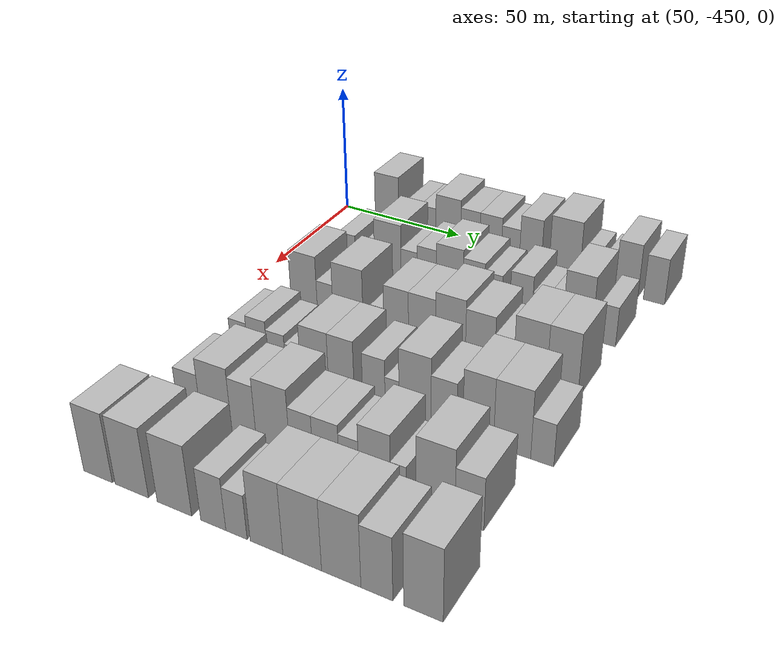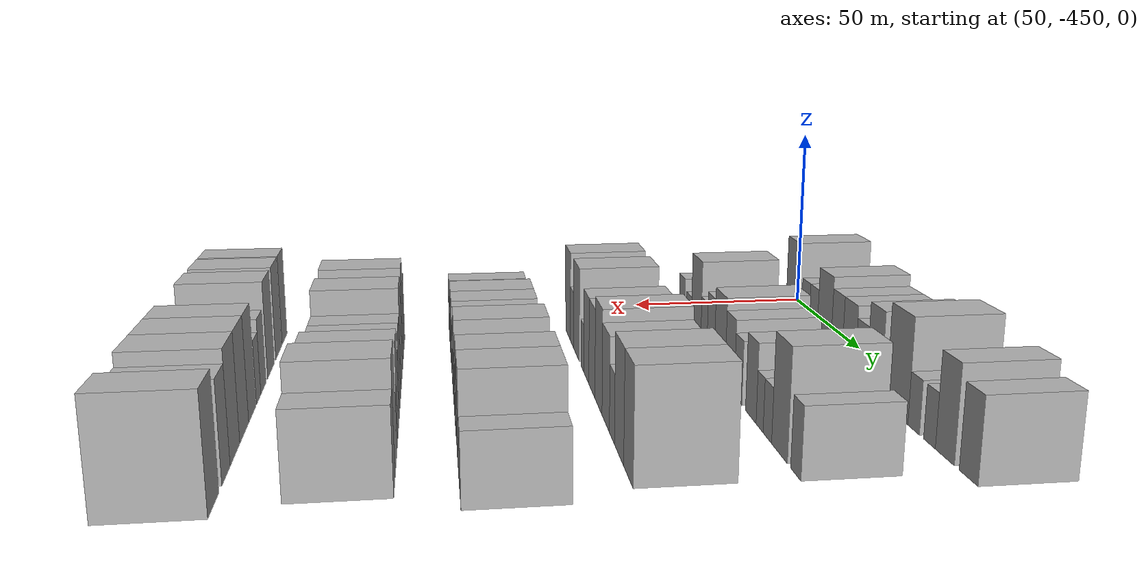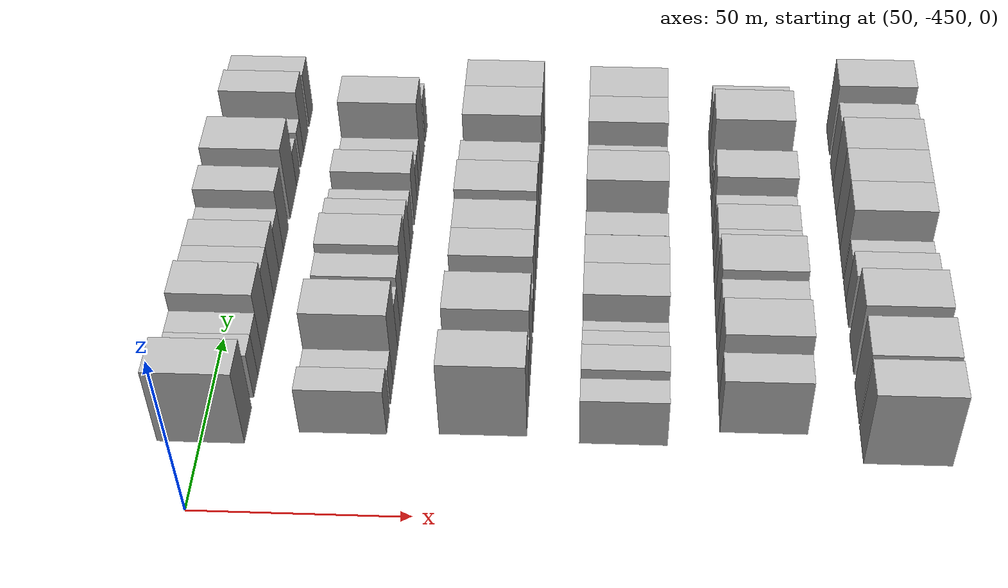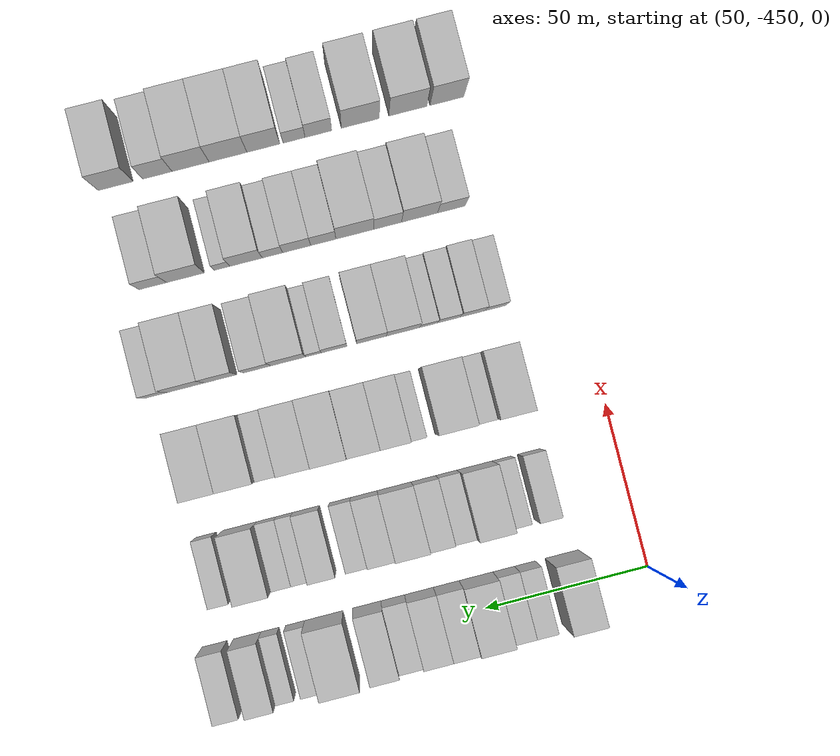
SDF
<sdf version="1.6">
 <world name="default">
  <model name="building_13">
   <static>1</static>
   <pose>50.0000 -425.9364 0 0.000000 0.000000 0.000000</pose>
   <link name="link">
    <pose>0 0 12.00 0 0 0</pose>
    <collision name="collision"><geometry><box><size>20.0000 10.2883 24.0000</size></box></geometry></collision>
    <visual name="visual">
     <cast_shadows>0</cast_shadows>
     <geometry><box><size>20.0000 10.2883 24.0000</size></box></geometry>
     <material>
      <script>
       <uri>model://HANNAS_wall/materials/scripts</uri>
       <uri>model://HANNAS_wall/materials/textures</uri>
       <name>vrc/HANNAS_wall</name>
      </script>
     </material>
    </visual>
   </link>
  </model>
  <model name="building_14">
   <static>1</static>
   <pose>50.0000 -414.5878 0 0.000000 0.000000 0.000000</pose>
   <link name="link">
    <pose>0 0 7.50 0 0 0</pose>
    <collision name="collision"><geometry><box><size>20.0000 6.4089 15.0000</size></box></geometry></collision>
    <visual name="visual">
     <cast_shadows>0</cast_shadows>
     <geometry><box><size>20.0000 6.4089 15.0000</size></box></geometry>
     <material>
      <script>
       <uri>model://HANNAS_wall/materials/scripts</uri>
       <uri>model://HANNAS_wall/materials/textures</uri>
       <name>vrc/HANNAS_wall</name>
      </script>
     </material>
    </visual>
   </link>
  </model>
  <model name="building_15">
   <static>1</static>
   <pose>50.0000 -408.0632 0 0.000000 0.000000 0.000000</pose>
   <link name="link">
    <pose>0 0 7.50 0 0 0</pose>
    <collision name="collision"><geometry><box><size>20.0000 6.6403 15.0000</size></box></geometry></collision>
    <visual name="visual">
     <cast_shadows>0</cast_shadows>
     <geometry><box><size>20.0000 6.6403 15.0000</size></box></geometry>
     <material>
      <script>
       <uri>model://HANNAS_wall/materials/scripts</uri>
       <uri>model://HANNAS_wall/materials/textures</uri>
       <name>vrc/HANNAS_wall</name>
      </script>
     </material>
    </visual>
   </link>
  </model>
  <model name="building_16">
   <static>1</static>
   <pose>50.0000 -399.5464 0 0.000000 0.000000 0.000000</pose>
   <link name="link">
    <pose>0 0 10.50 0 0 0</pose>
    <collision name="collision"><geometry><box><size>20.0000 10.3932 21.0000</size></box></geometry></collision>
    <visual name="visual">
     <cast_shadows>0</cast_shadows>
     <geometry><box><size>20.0000 10.3932 21.0000</size></box></geometry>
     <material>
      <script>
       <uri>model://HANNAS_wall/materials/scripts</uri>
       <uri>model://HANNAS_wall/materials/textures</uri>
       <name>vrc/HANNAS_wall</name>
      </script>
     </material>
    </visual>
   </link>
  </model>
  <model name="building_17">
   <static>1</static>
   <pose>50.0000 -390.3676 0 0.000000 0.000000 0.000000</pose>
   <link name="link">
    <pose>0 0 9.00 0 0 0</pose>
    <collision name="collision"><geometry><box><size>20.0000 7.9644 18.0000</size></box></geometry></collision>
    <visual name="visual">
     <cast_shadows>0</cast_shadows>
     <geometry><box><size>20.0000 7.9644 18.0000</size></box></geometry>
     <material>
      <script>
       <uri>model://HANNAS_wall/materials/scripts</uri>
       <uri>model://HANNAS_wall/materials/textures</uri>
       <name>vrc/HANNAS_wall</name>
      </script>
     </material>
    </visual>
   </link>
  </model>
  <model name="building_18">
   <static>1</static>
   <pose>50.0000 -381.9726 0 0.000000 0.000000 0.000000</pose>
   <link name="link">
    <pose>0 0 9.00 0 0 0</pose>
    <collision name="collision"><geometry><box><size>20.0000 8.8255 18.0000</size></box></geometry></collision>
    <visual name="visual">
     <cast_shadows>0</cast_shadows>
     <geometry><box><size>20.0000 8.8255 18.0000</size></box></geometry>
     <material>
      <script>
       <uri>model://HANNAS_wall/materials/scripts</uri>
       <uri>model://HANNAS_wall/materials/textures</uri>
       <name>vrc/HANNAS_wall</name>
      </script>
     </material>
    </visual>
   </link>
  </model>
  <model name="building_19">
   <static>1</static>
   <pose>50.0000 -373.9449 0 0.000000 0.000000 0.000000</pose>
   <link name="link">
    <pose>0 0 7.50 0 0 0</pose>
    <collision name="collision"><geometry><box><size>20.0000 7.2300 15.0000</size></box></geometry></collision>
    <visual name="visual">
     <cast_shadows>0</cast_shadows>
     <geometry><box><size>20.0000 7.2300 15.0000</size></box></geometry>
     <material>
      <script>
       <uri>model://HANNAS_wall/materials/scripts</uri>
       <uri>model://HANNAS_wall/materials/textures</uri>
       <name>vrc/HANNAS_wall</name>
      </script>
     </material>
    </visual>
   </link>
  </model>
  <model name="building_20">
   <static>1</static>
   <pose>50.0000 -366.0070 0 0.000000 0.000000 0.000000</pose>
   <link name="link">
    <pose>0 0 10.50 0 0 0</pose>
    <collision name="collision"><geometry><box><size>20.0000 8.6458 21.0000</size></box></geometry></collision>
    <visual name="visual">
     <cast_shadows>0</cast_shadows>
     <geometry><box><size>20.0000 8.6458 21.0000</size></box></geometry>
     <material>
      <script>
       <uri>model://HANNAS_wall/materials/scripts</uri>
       <uri>model://HANNAS_wall/materials/textures</uri>
       <name>vrc/HANNAS_wall</name>
      </script>
     </material>
    </visual>
   </link>
  </model>
  <model name="building_21">
   <static>1</static>
   <pose>50.0000 -352.7815 0 0.000000 0.000000 0.000000</pose>
   <link name="link">
    <pose>0 0 12.00 0 0 0</pose>
    <collision name="collision"><geometry><box><size>20.0000 11.8053 24.0000</size></box></geometry></collision>
    <visual name="visual">
     <cast_shadows>0</cast_shadows>
     <geometry><box><size>20.0000 11.8053 24.0000</size></box></geometry>
     <material>
      <script>
       <uri>model://HANNAS_wall/materials/scripts</uri>
       <uri>model://HANNAS_wall/materials/textures</uri>
       <name>vrc/HANNAS_wall</name>
      </script>
     </material>
    </visual>
   </link>
  </model>
  <model name="building_22">
   <static>1</static>
   <pose>50.0000 -343.9652 0 0.000000 0.000000 0.000000</pose>
   <link name="link">
    <pose>0 0 6.00 0 0 0</pose>
    <collision name="collision"><geometry><box><size>20.0000 5.8273 12.0000</size></box></geometry></collision>
    <visual name="visual">
     <cast_shadows>0</cast_shadows>
     <geometry><box><size>20.0000 5.8273 12.0000</size></box></geometry>
     <material>
      <script>
       <uri>model://HANNAS_wall/materials/scripts</uri>
       <uri>model://HANNAS_wall/materials/textures</uri>
       <name>vrc/HANNAS_wall</name>
      </script>
     </material>
    </visual>
   </link>
  </model>
  <model name="building_23">
   <static>1</static>
   <pose>50.0000 -336.2868 0 0.000000 0.000000 0.000000</pose>
   <link name="link">
    <pose>0 0 6.00 0 0 0</pose>
    <collision name="collision"><geometry><box><size>20.0000 5.5294 12.0000</size></box></geometry></collision>
    <visual name="visual">
     <cast_shadows>0</cast_shadows>
     <geometry><box><size>20.0000 5.5294 12.0000</size></box></geometry>
     <material>
      <script>
       <uri>model://HANNAS_wall/materials/scripts</uri>
       <uri>model://HANNAS_wall/materials/textures</uri>
       <name>vrc/HANNAS_wall</name>
      </script>
     </material>
    </visual>
   </link>
  </model>
  <model name="building_24">
   <static>1</static>
   <pose>50.0000 -329.2982 0 0.000000 0.000000 0.000000</pose>
   <link name="link">
    <pose>0 0 10.50 0 0 0</pose>
    <collision name="collision"><geometry><box><size>20.0000 8.4478 21.0000</size></box></geometry></collision>
    <visual name="visual">
     <cast_shadows>0</cast_shadows>
     <geometry><box><size>20.0000 8.4478 21.0000</size></box></geometry>
     <material>
      <script>
       <uri>model://HANNAS_wall/materials/scripts</uri>
       <uri>model://HANNAS_wall/materials/textures</uri>
       <name>vrc/HANNAS_wall</name>
      </script>
     </material>
    </visual>
   </link>
  </model>
  <model name="building_25">
   <static>1</static>
   <pose>50.0000 -319.2484 0 0.000000 0.000000 0.000000</pose>
   <link name="link">
    <pose>0 0 9.00 0 0 0</pose>
    <collision name="collision"><geometry><box><size>20.0000 7.6517 18.0000</size></box></geometry></collision>
    <visual name="visual">
     <cast_shadows>0</cast_shadows>
     <geometry><box><size>20.0000 7.6517 18.0000</size></box></geometry>
     <material>
      <script>
       <uri>model://HANNAS_wall/materials/scripts</uri>
       <uri>model://HANNAS_wall/materials/textures</uri>
       <name>vrc/HANNAS_wall</name>
      </script>
     </material>
    </visual>
   </link>
  </model>
  <model name="building_136">
   <static>1</static>
   <pose>82.0000 -424.0139 0 0.000000 0.000000 0.000000</pose>
   <link name="link">
    <pose>0 0 7.50 0 0 0</pose>
    <collision name="collision"><geometry><box><size>20.0000 6.8313 15.0000</size></box></geometry></collision>
    <visual name="visual">
     <cast_shadows>0</cast_shadows>
     <geometry><box><size>20.0000 6.8313 15.0000</size></box></geometry>
     <material>
      <script>
       <uri>model://HANNAS_wall/materials/scripts</uri>
       <uri>model://HANNAS_wall/materials/textures</uri>
       <name>vrc/HANNAS_wall</name>
      </script>
     </material>
    </visual>
   </link>
  </model>
  <model name="building_137">
   <static>1</static>
   <pose>82.0000 -415.6507 0 0.000000 0.000000 0.000000</pose>
   <link name="link">
    <pose>0 0 6.00 0 0 0</pose>
    <collision name="collision"><geometry><box><size>20.0000 5.8952 12.0000</size></box></geometry></collision>
    <visual name="visual">
     <cast_shadows>0</cast_shadows>
     <geometry><box><size>20.0000 5.8952 12.0000</size></box></geometry>
     <material>
      <script>
       <uri>model://HANNAS_wall/materials/scripts</uri>
       <uri>model://HANNAS_wall/materials/textures</uri>
       <name>vrc/HANNAS_wall</name>
      </script>
     </material>
    </visual>
   </link>
  </model>
  <model name="building_138">
   <static>1</static>
   <pose>82.0000 -407.2988 0 0.000000 0.000000 0.000000</pose>
   <link name="link">
    <pose>0 0 12.00 0 0 0</pose>
    <collision name="collision"><geometry><box><size>20.0000 10.8085 24.0000</size></box></geometry></collision>
    <visual name="visual">
     <cast_shadows>0</cast_shadows>
     <geometry><box><size>20.0000 10.8085 24.0000</size></box></geometry>
     <material>
      <script>
       <uri>model://HANNAS_wall/materials/scripts</uri>
       <uri>model://HANNAS_wall/materials/textures</uri>
       <name>vrc/HANNAS_wall</name>
      </script>
     </material>
    </visual>
   </link>
  </model>
  <model name="building_139">
   <static>1</static>
   <pose>82.0000 -398.6241 0 0.000000 0.000000 0.000000</pose>
   <link name="link">
    <pose>0 0 7.50 0 0 0</pose>
    <collision name="collision"><geometry><box><size>20.0000 6.5409 15.0000</size></box></geometry></collision>
    <visual name="visual">
     <cast_shadows>0</cast_shadows>
     <geometry><box><size>20.0000 6.5409 15.0000</size></box></geometry>
     <material>
      <script>
       <uri>model://HANNAS_wall/materials/scripts</uri>
       <uri>model://HANNAS_wall/materials/textures</uri>
       <name>vrc/HANNAS_wall</name>
      </script>
     </material>
    </visual>
   </link>
  </model>
  <model name="building_140">
   <static>1</static>
   <pose>82.0000 -391.5819 0 0.000000 0.000000 0.000000</pose>
   <link name="link">
    <pose>0 0 9.00 0 0 0</pose>
    <collision name="collision"><geometry><box><size>20.0000 7.5435 18.0000</size></box></geometry></collision>
    <visual name="visual">
     <cast_shadows>0</cast_shadows>
     <geometry><box><size>20.0000 7.5435 18.0000</size></box></geometry>
     <material>
      <script>
       <uri>model://HANNAS_wall/materials/scripts</uri>
       <uri>model://HANNAS_wall/materials/textures</uri>
       <name>vrc/HANNAS_wall</name>
      </script>
     </material>
    </visual>
   </link>
  </model>
  <model name="building_141">
   <static>1</static>
   <pose>82.0000 -382.6068 0 0.000000 0.000000 0.000000</pose>
   <link name="link">
    <pose>0 0 10.50 0 0 0</pose>
    <collision name="collision"><geometry><box><size>20.0000 10.4066 21.0000</size></box></geometry></collision>
    <visual name="visual">
     <cast_shadows>0</cast_shadows>
     <geometry><box><size>20.0000 10.4066 21.0000</size></box></geometry>
     <material>
      <script>
       <uri>model://HANNAS_wall/materials/scripts</uri>
       <uri>model://HANNAS_wall/materials/textures</uri>
       <name>vrc/HANNAS_wall</name>
      </script>
     </material>
    </visual>
   </link>
  </model>
  <model name="building_142">
   <static>1</static>
   <pose>82.0000 -373.2909 0 0.000000 0.000000 0.000000</pose>
   <link name="link">
    <pose>0 0 9.00 0 0 0</pose>
    <collision name="collision"><geometry><box><size>20.0000 8.2252 18.0000</size></box></geometry></collision>
    <visual name="visual">
     <cast_shadows>0</cast_shadows>
     <geometry><box><size>20.0000 8.2252 18.0000</size></box></geometry>
     <material>
      <script>
       <uri>model://HANNAS_wall/materials/scripts</uri>
       <uri>model://HANNAS_wall/materials/textures</uri>
       <name>vrc/HANNAS_wall</name>
      </script>
     </material>
    </visual>
   </link>
  </model>
  <model name="building_143">
   <static>1</static>
   <pose>82.0000 -365.9368 0 0.000000 0.000000 0.000000</pose>
   <link name="link">
    <pose>0 0 7.50 0 0 0</pose>
    <collision name="collision"><geometry><box><size>20.0000 6.4832 15.0000</size></box></geometry></collision>
    <visual name="visual">
     <cast_shadows>0</cast_shadows>
     <geometry><box><size>20.0000 6.4832 15.0000</size></box></geometry>
     <material>
      <script>
       <uri>model://HANNAS_wall/materials/scripts</uri>
       <uri>model://HANNAS_wall/materials/textures</uri>
       <name>vrc/HANNAS_wall</name>
      </script>
     </material>
    </visual>
   </link>
  </model>
  <model name="building_144">
   <static>1</static>
   <pose>82.0000 -355.5980 0 0.000000 0.000000 0.000000</pose>
   <link name="link">
    <pose>0 0 9.00 0 0 0</pose>
    <collision name="collision"><geometry><box><size>20.0000 8.1945 18.0000</size></box></geometry></collision>
    <visual name="visual">
     <cast_shadows>0</cast_shadows>
     <geometry><box><size>20.0000 8.1945 18.0000</size></box></geometry>
     <material>
      <script>
       <uri>model://HANNAS_wall/materials/scripts</uri>
       <uri>model://HANNAS_wall/materials/textures</uri>
       <name>vrc/HANNAS_wall</name>
      </script>
     </material>
    </visual>
   </link>
  </model>
  <model name="building_145">
   <static>1</static>
   <pose>82.0000 -348.9147 0 0.000000 0.000000 0.000000</pose>
   <link name="link">
    <pose>0 0 6.00 0 0 0</pose>
    <collision name="collision"><geometry><box><size>20.0000 5.1721 12.0000</size></box></geometry></collision>
    <visual name="visual">
     <cast_shadows>0</cast_shadows>
     <geometry><box><size>20.0000 5.1721 12.0000</size></box></geometry>
     <material>
      <script>
       <uri>model://HANNAS_wall/materials/scripts</uri>
       <uri>model://HANNAS_wall/materials/textures</uri>
       <name>vrc/HANNAS_wall</name>
      </script>
     </material>
    </visual>
   </link>
  </model>
  <model name="building_146">
   <static>1</static>
   <pose>82.0000 -343.3432 0 0.000000 0.000000 0.000000</pose>
   <link name="link">
    <pose>0 0 6.00 0 0 0</pose>
    <collision name="collision"><geometry><box><size>20.0000 5.9709 12.0000</size></box></geometry></collision>
    <visual name="visual">
     <cast_shadows>0</cast_shadows>
     <geometry><box><size>20.0000 5.9709 12.0000</size></box></geometry>
     <material>
      <script>
       <uri>model://HANNAS_wall/materials/scripts</uri>
       <uri>model://HANNAS_wall/materials/textures</uri>
       <name>vrc/HANNAS_wall</name>
      </script>
     </material>
    </visual>
   </link>
  </model>
  <model name="building_147">
   <static>1</static>
   <pose>82.0000 -335.1649 0 0.000000 0.000000 0.000000</pose>
   <link name="link">
    <pose>0 0 12.00 0 0 0</pose>
    <collision name="collision"><geometry><box><size>20.0000 10.3856 24.0000</size></box></geometry></collision>
    <visual name="visual">
     <cast_shadows>0</cast_shadows>
     <geometry><box><size>20.0000 10.3856 24.0000</size></box></geometry>
     <material>
      <script>
       <uri>model://HANNAS_wall/materials/scripts</uri>
       <uri>model://HANNAS_wall/materials/textures</uri>
       <name>vrc/HANNAS_wall</name>
      </script>
     </material>
    </visual>
   </link>
  </model>
  <model name="building_148">
   <static>1</static>
   <pose>82.0000 -324.8708 0 0.000000 0.000000 0.000000</pose>
   <link name="link">
    <pose>0 0 7.50 0 0 0</pose>
    <collision name="collision"><geometry><box><size>20.0000 6.2025 15.0000</size></box></geometry></collision>
    <visual name="visual">
     <cast_shadows>0</cast_shadows>
     <geometry><box><size>20.0000 6.2025 15.0000</size></box></geometry>
     <material>
      <script>
       <uri>model://HANNAS_wall/materials/scripts</uri>
       <uri>model://HANNAS_wall/materials/textures</uri>
       <name>vrc/HANNAS_wall</name>
      </script>
     </material>
    </visual>
   </link>
  </model>
  <model name="building_261">
   <static>1</static>
   <pose>114.0000 -421.6231 0 0.000000 0.000000 0.000000</pose>
   <link name="link">
    <pose>0 0 12.00 0 0 0</pose>
    <collision name="collision"><geometry><box><size>20.0000 10.5878 24.0000</size></box></geometry></collision>
    <visual name="visual">
     <cast_shadows>0</cast_shadows>
     <geometry><box><size>20.0000 10.5878 24.0000</size></box></geometry>
     <material>
      <script>
       <uri>model://HANNAS_wall/materials/scripts</uri>
       <uri>model://HANNAS_wall/materials/textures</uri>
       <name>vrc/HANNAS_wall</name>
      </script>
     </material>
    </visual>
   </link>
  </model>
  <model name="building_262">
   <static>1</static>
   <pose>114.0000 -413.2078 0 0.000000 0.000000 0.000000</pose>
   <link name="link">
    <pose>0 0 7.50 0 0 0</pose>
    <collision name="collision"><geometry><box><size>20.0000 6.2428 15.0000</size></box></geometry></collision>
    <visual name="visual">
     <cast_shadows>0</cast_shadows>
     <geometry><box><size>20.0000 6.2428 15.0000</size></box></geometry>
     <material>
      <script>
       <uri>model://HANNAS_wall/materials/scripts</uri>
       <uri>model://HANNAS_wall/materials/textures</uri>
       <name>vrc/HANNAS_wall</name>
      </script>
     </material>
    </visual>
   </link>
  </model>
  <model name="building_263">
   <static>1</static>
   <pose>114.0000 -404.2256 0 0.000000 0.000000 0.000000</pose>
   <link name="link">
    <pose>0 0 12.00 0 0 0</pose>
    <collision name="collision"><geometry><box><size>20.0000 11.7217 24.0000</size></box></geometry></collision>
    <visual name="visual">
     <cast_shadows>0</cast_shadows>
     <geometry><box><size>20.0000 11.7217 24.0000</size></box></geometry>
     <material>
      <script>
       <uri>model://HANNAS_wall/materials/scripts</uri>
       <uri>model://HANNAS_wall/materials/textures</uri>
       <name>vrc/HANNAS_wall</name>
      </script>
     </material>
    </visual>
   </link>
  </model>
  <model name="building_264">
   <static>1</static>
   <pose>114.0000 -392.8955 0 0.000000 0.000000 0.000000</pose>
   <link name="link">
    <pose>0 0 6.00 0 0 0</pose>
    <collision name="collision"><geometry><box><size>20.0000 4.9385 12.0000</size></box></geometry></collision>
    <visual name="visual">
     <cast_shadows>0</cast_shadows>
     <geometry><box><size>20.0000 4.9385 12.0000</size></box></geometry>
     <material>
      <script>
       <uri>model://HANNAS_wall/materials/scripts</uri>
       <uri>model://HANNAS_wall/materials/textures</uri>
       <name>vrc/HANNAS_wall</name>
      </script>
     </material>
    </visual>
   </link>
  </model>
  <model name="building_265">
   <static>1</static>
   <pose>114.0000 -385.8315 0 0.000000 0.000000 0.000000</pose>
   <link name="link">
    <pose>0 0 10.50 0 0 0</pose>
    <collision name="collision"><geometry><box><size>20.0000 9.1895 21.0000</size></box></geometry></collision>
    <visual name="visual">
     <cast_shadows>0</cast_shadows>
     <geometry><box><size>20.0000 9.1895 21.0000</size></box></geometry>
     <material>
      <script>
       <uri>model://HANNAS_wall/materials/scripts</uri>
       <uri>model://HANNAS_wall/materials/textures</uri>
       <name>vrc/HANNAS_wall</name>
      </script>
     </material>
    </visual>
   </link>
  </model>
  <model name="building_266">
   <static>1</static>
   <pose>114.0000 -376.2881 0 0.000000 0.000000 0.000000</pose>
   <link name="link">
    <pose>0 0 10.50 0 0 0</pose>
    <collision name="collision"><geometry><box><size>20.0000 9.8972 21.0000</size></box></geometry></collision>
    <visual name="visual">
     <cast_shadows>0</cast_shadows>
     <geometry><box><size>20.0000 9.8972 21.0000</size></box></geometry>
     <material>
      <script>
       <uri>model://HANNAS_wall/materials/scripts</uri>
       <uri>model://HANNAS_wall/materials/textures</uri>
       <name>vrc/HANNAS_wall</name>
      </script>
     </material>
    </visual>
   </link>
  </model>
  <model name="building_267">
   <static>1</static>
   <pose>114.0000 -365.9940 0 0.000000 0.000000 0.000000</pose>
   <link name="link">
    <pose>0 0 12.00 0 0 0</pose>
    <collision name="collision"><geometry><box><size>20.0000 10.6910 24.0000</size></box></geometry></collision>
    <visual name="visual">
     <cast_shadows>0</cast_shadows>
     <geometry><box><size>20.0000 10.6910 24.0000</size></box></geometry>
     <material>
      <script>
       <uri>model://HANNAS_wall/materials/scripts</uri>
       <uri>model://HANNAS_wall/materials/textures</uri>
       <name>vrc/HANNAS_wall</name>
      </script>
     </material>
    </visual>
   </link>
  </model>
  <model name="building_268">
   <static>1</static>
   <pose>114.0000 -355.5231 0 0.000000 0.000000 0.000000</pose>
   <link name="link">
    <pose>0 0 10.50 0 0 0</pose>
    <collision name="collision"><geometry><box><size>20.0000 10.2508 21.0000</size></box></geometry></collision>
    <visual name="visual">
     <cast_shadows>0</cast_shadows>
     <geometry><box><size>20.0000 10.2508 21.0000</size></box></geometry>
     <material>
      <script>
       <uri>model://HANNAS_wall/materials/scripts</uri>
       <uri>model://HANNAS_wall/materials/textures</uri>
       <name>vrc/HANNAS_wall</name>
      </script>
     </material>
    </visual>
   </link>
  </model>
  <model name="building_269">
   <static>1</static>
   <pose>114.0000 -347.1453 0 0.000000 0.000000 0.000000</pose>
   <link name="link">
    <pose>0 0 7.50 0 0 0</pose>
    <collision name="collision"><geometry><box><size>20.0000 6.5048 15.0000</size></box></geometry></collision>
    <visual name="visual">
     <cast_shadows>0</cast_shadows>
     <geometry><box><size>20.0000 6.5048 15.0000</size></box></geometry>
     <material>
      <script>
       <uri>model://HANNAS_wall/materials/scripts</uri>
       <uri>model://HANNAS_wall/materials/textures</uri>
       <name>vrc/HANNAS_wall</name>
      </script>
     </material>
    </visual>
   </link>
  </model>
  <model name="building_270">
   <static>1</static>
   <pose>114.0000 -338.3210 0 0.000000 0.000000 0.000000</pose>
   <link name="link">
    <pose>0 0 12.00 0 0 0</pose>
    <collision name="collision"><geometry><box><size>20.0000 11.1437 24.0000</size></box></geometry></collision>
    <visual name="visual">
     <cast_shadows>0</cast_shadows>
     <geometry><box><size>20.0000 11.1437 24.0000</size></box></geometry>
     <material>
      <script>
       <uri>model://HANNAS_wall/materials/scripts</uri>
       <uri>model://HANNAS_wall/materials/textures</uri>
       <name>vrc/HANNAS_wall</name>
      </script>
     </material>
    </visual>
   </link>
  </model>
  <model name="building_271">
   <static>1</static>
   <pose>114.0000 -327.5520 0 0.000000 0.000000 0.000000</pose>
   <link name="link">
    <pose>0 0 12.00 0 0 0</pose>
    <collision name="collision"><geometry><box><size>20.0000 10.3944 24.0000</size></box></geometry></collision>
    <visual name="visual">
     <cast_shadows>0</cast_shadows>
     <geometry><box><size>20.0000 10.3944 24.0000</size></box></geometry>
     <material>
      <script>
       <uri>model://HANNAS_wall/materials/scripts</uri>
       <uri>model://HANNAS_wall/materials/textures</uri>
       <name>vrc/HANNAS_wall</name>
      </script>
     </material>
    </visual>
   </link>
  </model>
  <model name="building_379">
   <static>1</static>
   <pose>146.0000 -425.1521 0 0.000000 0.000000 0.000000</pose>
   <link name="link">
    <pose>0 0 7.50 0 0 0</pose>
    <collision name="collision"><geometry><box><size>20.0000 6.6522 15.0000</size></box></geometry></collision>
    <visual name="visual">
     <cast_shadows>0</cast_shadows>
     <geometry><box><size>20.0000 6.6522 15.0000</size></box></geometry>
     <material>
      <script>
       <uri>model://HANNAS_wall/materials/scripts</uri>
       <uri>model://HANNAS_wall/materials/textures</uri>
       <name>vrc/HANNAS_wall</name>
      </script>
     </material>
    </visual>
   </link>
  </model>
  <model name="building_380">
   <static>1</static>
   <pose>146.0000 -418.0735 0 0.000000 0.000000 0.000000</pose>
   <link name="link">
    <pose>0 0 9.00 0 0 0</pose>
    <collision name="collision"><geometry><box><size>20.0000 7.5050 18.0000</size></box></geometry></collision>
    <visual name="visual">
     <cast_shadows>0</cast_shadows>
     <geometry><box><size>20.0000 7.5050 18.0000</size></box></geometry>
     <material>
      <script>
       <uri>model://HANNAS_wall/materials/scripts</uri>
       <uri>model://HANNAS_wall/materials/textures</uri>
       <name>vrc/HANNAS_wall</name>
      </script>
     </material>
    </visual>
   </link>
  </model>
  <model name="building_381">
   <static>1</static>
   <pose>146.0000 -410.9006 0 0.000000 0.000000 0.000000</pose>
   <link name="link">
    <pose>0 0 7.50 0 0 0</pose>
    <collision name="collision"><geometry><box><size>20.0000 6.8407 15.0000</size></box></geometry></collision>
    <visual name="visual">
     <cast_shadows>0</cast_shadows>
     <geometry><box><size>20.0000 6.8407 15.0000</size></box></geometry>
     <material>
      <script>
       <uri>model://HANNAS_wall/materials/scripts</uri>
       <uri>model://HANNAS_wall/materials/textures</uri>
       <name>vrc/HANNAS_wall</name>
      </script>
     </material>
    </visual>
   </link>
  </model>
  <model name="building_382">
   <static>1</static>
   <pose>146.0000 -404.6617 0 0.000000 0.000000 0.000000</pose>
   <link name="link">
    <pose>0 0 6.00 0 0 0</pose>
    <collision name="collision"><geometry><box><size>20.0000 5.6371 12.0000</size></box></geometry></collision>
    <visual name="visual">
     <cast_shadows>0</cast_shadows>
     <geometry><box><size>20.0000 5.6371 12.0000</size></box></geometry>
     <material>
      <script>
       <uri>model://HANNAS_wall/materials/scripts</uri>
       <uri>model://HANNAS_wall/materials/textures</uri>
       <name>vrc/HANNAS_wall</name>
      </script>
     </material>
    </visual>
   </link>
  </model>
  <model name="building_383">
   <static>1</static>
   <pose>146.0000 -396.7346 0 0.000000 0.000000 0.000000</pose>
   <link name="link">
    <pose>0 0 10.50 0 0 0</pose>
    <collision name="collision"><geometry><box><size>20.0000 10.2170 21.0000</size></box></geometry></collision>
    <visual name="visual">
     <cast_shadows>0</cast_shadows>
     <geometry><box><size>20.0000 10.2170 21.0000</size></box></geometry>
     <material>
      <script>
       <uri>model://HANNAS_wall/materials/scripts</uri>
       <uri>model://HANNAS_wall/materials/textures</uri>
       <name>vrc/HANNAS_wall</name>
      </script>
     </material>
    </visual>
   </link>
  </model>
  <model name="building_384">
   <static>1</static>
   <pose>146.0000 -387.0377 0 0.000000 0.000000 0.000000</pose>
   <link name="link">
    <pose>0 0 10.50 0 0 0</pose>
    <collision name="collision"><geometry><box><size>20.0000 9.1769 21.0000</size></box></geometry></collision>
    <visual name="visual">
     <cast_shadows>0</cast_shadows>
     <geometry><box><size>20.0000 9.1769 21.0000</size></box></geometry>
     <material>
      <script>
       <uri>model://HANNAS_wall/materials/scripts</uri>
       <uri>model://HANNAS_wall/materials/textures</uri>
       <name>vrc/HANNAS_wall</name>
      </script>
     </material>
    </visual>
   </link>
  </model>
  <model name="building_385">
   <static>1</static>
   <pose>146.0000 -375.5274 0 0.000000 0.000000 0.000000</pose>
   <link name="link">
    <pose>0 0 9.00 0 0 0</pose>
    <collision name="collision"><geometry><box><size>20.0000 7.8437 18.0000</size></box></geometry></collision>
    <visual name="visual">
     <cast_shadows>0</cast_shadows>
     <geometry><box><size>20.0000 7.8437 18.0000</size></box></geometry>
     <material>
      <script>
       <uri>model://HANNAS_wall/materials/scripts</uri>
       <uri>model://HANNAS_wall/materials/textures</uri>
       <name>vrc/HANNAS_wall</name>
      </script>
     </material>
    </visual>
   </link>
  </model>
  <model name="building_386">
   <static>1</static>
   <pose>146.0000 -369.2013 0 0.000000 0.000000 0.000000</pose>
   <link name="link">
    <pose>0 0 6.00 0 0 0</pose>
    <collision name="collision"><geometry><box><size>20.0000 4.8083 12.0000</size></box></geometry></collision>
    <visual name="visual">
     <cast_shadows>0</cast_shadows>
     <geometry><box><size>20.0000 4.8083 12.0000</size></box></geometry>
     <material>
      <script>
       <uri>model://HANNAS_wall/materials/scripts</uri>
       <uri>model://HANNAS_wall/materials/textures</uri>
       <name>vrc/HANNAS_wall</name>
      </script>
     </material>
    </visual>
   </link>
  </model>
  <model name="building_387">
   <static>1</static>
   <pose>146.0000 -361.4120 0 0.000000 0.000000 0.000000</pose>
   <link name="link">
    <pose>0 0 12.00 0 0 0</pose>
    <collision name="collision"><geometry><box><size>20.0000 10.7704 24.0000</size></box></geometry></collision>
    <visual name="visual">
     <cast_shadows>0</cast_shadows>
     <geometry><box><size>20.0000 10.7704 24.0000</size></box></geometry>
     <material>
      <script>
       <uri>model://HANNAS_wall/materials/scripts</uri>
       <uri>model://HANNAS_wall/materials/textures</uri>
       <name>vrc/HANNAS_wall</name>
      </script>
     </material>
    </visual>
   </link>
  </model>
  <model name="building_388">
   <static>1</static>
   <pose>146.0000 -351.7961 0 0.000000 0.000000 0.000000</pose>
   <link name="link">
    <pose>0 0 9.00 0 0 0</pose>
    <collision name="collision"><geometry><box><size>20.0000 8.4612 18.0000</size></box></geometry></collision>
    <visual name="visual">
     <cast_shadows>0</cast_shadows>
     <geometry><box><size>20.0000 8.4612 18.0000</size></box></geometry>
     <material>
      <script>
       <uri>model://HANNAS_wall/materials/scripts</uri>
       <uri>model://HANNAS_wall/materials/textures</uri>
       <name>vrc/HANNAS_wall</name>
      </script>
     </material>
    </visual>
   </link>
  </model>
  <model name="building_389">
   <static>1</static>
   <pose>146.0000 -340.6218 0 0.000000 0.000000 0.000000</pose>
   <link name="link">
    <pose>0 0 12.00 0 0 0</pose>
    <collision name="collision"><geometry><box><size>20.0000 9.8874 24.0000</size></box></geometry></collision>
    <visual name="visual">
     <cast_shadows>0</cast_shadows>
     <geometry><box><size>20.0000 9.8874 24.0000</size></box></geometry>
     <material>
      <script>
       <uri>model://HANNAS_wall/materials/scripts</uri>
       <uri>model://HANNAS_wall/materials/textures</uri>
       <name>vrc/HANNAS_wall</name>
      </script>
     </material>
    </visual>
   </link>
  </model>
  <model name="building_390">
   <static>1</static>
   <pose>146.0000 -329.8637 0 0.000000 0.000000 0.000000</pose>
   <link name="link">
    <pose>0 0 12.00 0 0 0</pose>
    <collision name="collision"><geometry><box><size>20.0000 11.6289 24.0000</size></box></geometry></collision>
    <visual name="visual">
     <cast_shadows>0</cast_shadows>
     <geometry><box><size>20.0000 11.6289 24.0000</size></box></geometry>
     <material>
      <script>
       <uri>model://HANNAS_wall/materials/scripts</uri>
       <uri>model://HANNAS_wall/materials/textures</uri>
       <name>vrc/HANNAS_wall</name>
      </script>
     </material>
    </visual>
   </link>
  </model>
  <model name="building_391">
   <static>1</static>
   <pose>146.0000 -320.5108 0 0.000000 0.000000 0.000000</pose>
   <link name="link">
    <pose>0 0 7.50 0 0 0</pose>
    <collision name="collision"><geometry><box><size>20.0000 7.0768 15.0000</size></box></geometry></collision>
    <visual name="visual">
     <cast_shadows>0</cast_shadows>
     <geometry><box><size>20.0000 7.0768 15.0000</size></box></geometry>
     <material>
      <script>
       <uri>model://HANNAS_wall/materials/scripts</uri>
       <uri>model://HANNAS_wall/materials/textures</uri>
       <name>vrc/HANNAS_wall</name>
      </script>
     </material>
    </visual>
   </link>
  </model>
  <model name="building_500">
   <static>1</static>
   <pose>178.0000 -419.9684 0 0.000000 0.000000 0.000000</pose>
   <link name="link">
    <pose>0 0 9.00 0 0 0</pose>
    <collision name="collision"><geometry><box><size>20.0000 8.5273 18.0000</size></box></geometry></collision>
    <visual name="visual">
     <cast_shadows>0</cast_shadows>
     <geometry><box><size>20.0000 8.5273 18.0000</size></box></geometry>
     <material>
      <script>
       <uri>model://HANNAS_wall/materials/scripts</uri>
       <uri>model://HANNAS_wall/materials/textures</uri>
       <name>vrc/HANNAS_wall</name>
      </script>
     </material>
    </visual>
   </link>
  </model>
  <model name="building_501">
   <static>1</static>
   <pose>178.0000 -410.1233 0 0.000000 0.000000 0.000000</pose>
   <link name="link">
    <pose>0 0 12.00 0 0 0</pose>
    <collision name="collision"><geometry><box><size>20.0000 11.1628 24.0000</size></box></geometry></collision>
    <visual name="visual">
     <cast_shadows>0</cast_shadows>
     <geometry><box><size>20.0000 11.1628 24.0000</size></box></geometry>
     <material>
      <script>
       <uri>model://HANNAS_wall/materials/scripts</uri>
       <uri>model://HANNAS_wall/materials/textures</uri>
       <name>vrc/HANNAS_wall</name>
      </script>
     </material>
    </visual>
   </link>
  </model>
  <model name="building_502">
   <static>1</static>
   <pose>178.0000 -400.2189 0 0.000000 0.000000 0.000000</pose>
   <link name="link">
    <pose>0 0 10.50 0 0 0</pose>
    <collision name="collision"><geometry><box><size>20.0000 8.6461 21.0000</size></box></geometry></collision>
    <visual name="visual">
     <cast_shadows>0</cast_shadows>
     <geometry><box><size>20.0000 8.6461 21.0000</size></box></geometry>
     <material>
      <script>
       <uri>model://HANNAS_wall/materials/scripts</uri>
       <uri>model://HANNAS_wall/materials/textures</uri>
       <name>vrc/HANNAS_wall</name>
      </script>
     </material>
    </visual>
   </link>
  </model>
  <model name="building_503">
   <static>1</static>
   <pose>178.0000 -390.0796 0 0.000000 0.000000 0.000000</pose>
   <link name="link">
    <pose>0 0 12.00 0 0 0</pose>
    <collision name="collision"><geometry><box><size>20.0000 11.6325 24.0000</size></box></geometry></collision>
    <visual name="visual">
     <cast_shadows>0</cast_shadows>
     <geometry><box><size>20.0000 11.6325 24.0000</size></box></geometry>
     <material>
      <script>
       <uri>model://HANNAS_wall/materials/scripts</uri>
       <uri>model://HANNAS_wall/materials/textures</uri>
       <name>vrc/HANNAS_wall</name>
      </script>
     </material>
    </visual>
   </link>
  </model>
  <model name="building_504">
   <static>1</static>
   <pose>178.0000 -380.3731 0 0.000000 0.000000 0.000000</pose>
   <link name="link">
    <pose>0 0 9.00 0 0 0</pose>
    <collision name="collision"><geometry><box><size>20.0000 7.7806 18.0000</size></box></geometry></collision>
    <visual name="visual">
     <cast_shadows>0</cast_shadows>
     <geometry><box><size>20.0000 7.7806 18.0000</size></box></geometry>
     <material>
      <script>
       <uri>model://HANNAS_wall/materials/scripts</uri>
       <uri>model://HANNAS_wall/materials/textures</uri>
       <name>vrc/HANNAS_wall</name>
      </script>
     </material>
    </visual>
   </link>
  </model>
  <model name="building_505">
   <static>1</static>
   <pose>178.0000 -372.1585 0 0.000000 0.000000 0.000000</pose>
   <link name="link">
    <pose>0 0 9.00 0 0 0</pose>
    <collision name="collision"><geometry><box><size>20.0000 8.6486 18.0000</size></box></geometry></collision>
    <visual name="visual">
     <cast_shadows>0</cast_shadows>
     <geometry><box><size>20.0000 8.6486 18.0000</size></box></geometry>
     <material>
      <script>
       <uri>model://HANNAS_wall/materials/scripts</uri>
       <uri>model://HANNAS_wall/materials/textures</uri>
       <name>vrc/HANNAS_wall</name>
      </script>
     </material>
    </visual>
   </link>
  </model>
  <model name="building_506">
   <static>1</static>
   <pose>178.0000 -364.6780 0 0.000000 0.000000 0.000000</pose>
   <link name="link">
    <pose>0 0 7.50 0 0 0</pose>
    <collision name="collision"><geometry><box><size>20.0000 6.3125 15.0000</size></box></geometry></collision>
    <visual name="visual">
     <cast_shadows>0</cast_shadows>
     <geometry><box><size>20.0000 6.3125 15.0000</size></box></geometry>
     <material>
      <script>
       <uri>model://HANNAS_wall/materials/scripts</uri>
       <uri>model://HANNAS_wall/materials/textures</uri>
       <name>vrc/HANNAS_wall</name>
      </script>
     </material>
    </visual>
   </link>
  </model>
  <model name="building_507">
   <static>1</static>
   <pose>178.0000 -356.5189 0 0.000000 0.000000 0.000000</pose>
   <link name="link">
    <pose>0 0 10.50 0 0 0</pose>
    <collision name="collision"><geometry><box><size>20.0000 10.0056 21.0000</size></box></geometry></collision>
    <visual name="visual">
     <cast_shadows>0</cast_shadows>
     <geometry><box><size>20.0000 10.0056 21.0000</size></box></geometry>
     <material>
      <script>
       <uri>model://HANNAS_wall/materials/scripts</uri>
       <uri>model://HANNAS_wall/materials/textures</uri>
       <name>vrc/HANNAS_wall</name>
      </script>
     </material>
    </visual>
   </link>
  </model>
  <model name="building_508">
   <static>1</static>
   <pose>178.0000 -349.0812 0 0.000000 0.000000 0.000000</pose>
   <link name="link">
    <pose>0 0 6.00 0 0 0</pose>
    <collision name="collision"><geometry><box><size>20.0000 4.8699 12.0000</size></box></geometry></collision>
    <visual name="visual">
     <cast_shadows>0</cast_shadows>
     <geometry><box><size>20.0000 4.8699 12.0000</size></box></geometry>
     <material>
      <script>
       <uri>model://HANNAS_wall/materials/scripts</uri>
       <uri>model://HANNAS_wall/materials/textures</uri>
       <name>vrc/HANNAS_wall</name>
      </script>
     </material>
    </visual>
   </link>
  </model>
  <model name="building_509">
   <static>1</static>
   <pose>178.0000 -337.7915 0 0.000000 0.000000 0.000000</pose>
   <link name="link">
    <pose>0 0 12.00 0 0 0</pose>
    <collision name="collision"><geometry><box><size>20.0000 11.7096 24.0000</size></box></geometry></collision>
    <visual name="visual">
     <cast_shadows>0</cast_shadows>
     <geometry><box><size>20.0000 11.7096 24.0000</size></box></geometry>
     <material>
      <script>
       <uri>model://HANNAS_wall/materials/scripts</uri>
       <uri>model://HANNAS_wall/materials/textures</uri>
       <name>vrc/HANNAS_wall</name>
      </script>
     </material>
    </visual>
   </link>
  </model>
  <model name="building_510">
   <static>1</static>
   <pose>178.0000 -327.7039 0 0.000000 0.000000 0.000000</pose>
   <link name="link">
    <pose>0 0 9.00 0 0 0</pose>
    <collision name="collision"><geometry><box><size>20.0000 8.4656 18.0000</size></box></geometry></collision>
    <visual name="visual">
     <cast_shadows>0</cast_shadows>
     <geometry><box><size>20.0000 8.4656 18.0000</size></box></geometry>
     <material>
      <script>
       <uri>model://HANNAS_wall/materials/scripts</uri>
       <uri>model://HANNAS_wall/materials/textures</uri>
       <name>vrc/HANNAS_wall</name>
      </script>
     </material>
    </visual>
   </link>
  </model>
  <model name="building_614">
   <static>1</static>
   <pose>210.0000 -426.8960 0 0.000000 0.000000 0.000000</pose>
   <link name="link">
    <pose>0 0 12.00 0 0 0</pose>
    <collision name="collision"><geometry><box><size>20.0000 10.4290 24.0000</size></box></geometry></collision>
    <visual name="visual">
     <cast_shadows>0</cast_shadows>
     <geometry><box><size>20.0000 10.4290 24.0000</size></box></geometry>
     <material>
      <script>
       <uri>model://HANNAS_wall/materials/scripts</uri>
       <uri>model://HANNAS_wall/materials/textures</uri>
       <name>vrc/HANNAS_wall</name>
      </script>
     </material>
    </visual>
   </link>
  </model>
  <model name="building_615">
   <static>1</static>
   <pose>210.0000 -414.7903 0 0.000000 0.000000 0.000000</pose>
   <link name="link">
    <pose>0 0 12.00 0 0 0</pose>
    <collision name="collision"><geometry><box><size>20.0000 11.7823 24.0000</size></box></geometry></collision>
    <visual name="visual">
     <cast_shadows>0</cast_shadows>
     <geometry><box><size>20.0000 11.7823 24.0000</size></box></geometry>
     <material>
      <script>
       <uri>model://HANNAS_wall/materials/scripts</uri>
       <uri>model://HANNAS_wall/materials/textures</uri>
       <name>vrc/HANNAS_wall</name>
      </script>
     </material>
    </visual>
   </link>
  </model>
  <model name="building_616">
   <static>1</static>
   <pose>210.0000 -400.0383 0 0.000000 0.000000 0.000000</pose>
   <link name="link">
    <pose>0 0 12.00 0 0 0</pose>
    <collision name="collision"><geometry><box><size>20.0000 11.7218 24.0000</size></box></geometry></collision>
    <visual name="visual">
     <cast_shadows>0</cast_shadows>
     <geometry><box><size>20.0000 11.7218 24.0000</size></box></geometry>
     <material>
      <script>
       <uri>model://HANNAS_wall/materials/scripts</uri>
       <uri>model://HANNAS_wall/materials/textures</uri>
       <name>vrc/HANNAS_wall</name>
      </script>
     </material>
    </visual>
   </link>
  </model>
  <model name="building_617">
   <static>1</static>
   <pose>210.0000 -387.0570 0 0.000000 0.000000 0.000000</pose>
   <link name="link">
    <pose>0 0 9.00 0 0 0</pose>
    <collision name="collision"><geometry><box><size>20.0000 8.2408 18.0000</size></box></geometry></collision>
    <visual name="visual">
     <cast_shadows>0</cast_shadows>
     <geometry><box><size>20.0000 8.2408 18.0000</size></box></geometry>
     <material>
      <script>
       <uri>model://HANNAS_wall/materials/scripts</uri>
       <uri>model://HANNAS_wall/materials/textures</uri>
       <name>vrc/HANNAS_wall</name>
      </script>
     </material>
    </visual>
   </link>
  </model>
  <model name="building_618">
   <static>1</static>
   <pose>210.0000 -379.5289 0 0.000000 0.000000 0.000000</pose>
   <link name="link">
    <pose>0 0 7.50 0 0 0</pose>
    <collision name="collision"><geometry><box><size>20.0000 6.8154 15.0000</size></box></geometry></collision>
    <visual name="visual">
     <cast_shadows>0</cast_shadows>
     <geometry><box><size>20.0000 6.8154 15.0000</size></box></geometry>
     <material>
      <script>
       <uri>model://HANNAS_wall/materials/scripts</uri>
       <uri>model://HANNAS_wall/materials/textures</uri>
       <name>vrc/HANNAS_wall</name>
      </script>
     </material>
    </visual>
   </link>
  </model>
  <model name="building_619">
   <static>1</static>
   <pose>210.0000 -370.0297 0 0.000000 0.000000 0.000000</pose>
   <link name="link">
    <pose>0 0 12.00 0 0 0</pose>
    <collision name="collision"><geometry><box><size>20.0000 10.1829 24.0000</size></box></geometry></collision>
    <visual name="visual">
     <cast_shadows>0</cast_shadows>
     <geometry><box><size>20.0000 10.1829 24.0000</size></box></geometry>
     <material>
      <script>
       <uri>model://HANNAS_wall/materials/scripts</uri>
       <uri>model://HANNAS_wall/materials/textures</uri>
       <name>vrc/HANNAS_wall</name>
      </script>
     </material>
    </visual>
   </link>
  </model>
  <model name="building_620">
   <static>1</static>
   <pose>210.0000 -359.0895 0 0.000000 0.000000 0.000000</pose>
   <link name="link">
    <pose>0 0 12.00 0 0 0</pose>
    <collision name="collision"><geometry><box><size>20.0000 11.6975 24.0000</size></box></geometry></collision>
    <visual name="visual">
     <cast_shadows>0</cast_shadows>
     <geometry><box><size>20.0000 11.6975 24.0000</size></box></geometry>
     <material>
      <script>
       <uri>model://HANNAS_wall/materials/scripts</uri>
       <uri>model://HANNAS_wall/materials/textures</uri>
       <name>vrc/HANNAS_wall</name>
      </script>
     </material>
    </visual>
   </link>
  </model>
  <model name="building_621">
   <static>1</static>
   <pose>210.0000 -347.4909 0 0.000000 0.000000 0.000000</pose>
   <link name="link">
    <pose>0 0 12.00 0 0 0</pose>
    <collision name="collision"><geometry><box><size>20.0000 11.4997 24.0000</size></box></geometry></collision>
    <visual name="visual">
     <cast_shadows>0</cast_shadows>
     <geometry><box><size>20.0000 11.4997 24.0000</size></box></geometry>
     <material>
      <script>
       <uri>model://HANNAS_wall/materials/scripts</uri>
       <uri>model://HANNAS_wall/materials/textures</uri>
       <name>vrc/HANNAS_wall</name>
      </script>
     </material>
    </visual>
   </link>
  </model>
  <model name="building_622">
   <static>1</static>
   <pose>210.0000 -337.2088 0 0.000000 0.000000 0.000000</pose>
   <link name="link">
    <pose>0 0 10.50 0 0 0</pose>
    <collision name="collision"><geometry><box><size>20.0000 9.0644 21.0000</size></box></geometry></collision>
    <visual name="visual">
     <cast_shadows>0</cast_shadows>
     <geometry><box><size>20.0000 9.0644 21.0000</size></box></geometry>
     <material>
      <script>
       <uri>model://HANNAS_wall/materials/scripts</uri>
       <uri>model://HANNAS_wall/materials/textures</uri>
       <name>vrc/HANNAS_wall</name>
      </script>
     </material>
    </visual>
   </link>
  </model>
  <model name="building_623">
   <static>1</static>
   <pose>210.0000 -324.2700 0 0.000000 0.000000 0.000000</pose>
   <link name="link">
    <pose>0 0 12.00 0 0 0</pose>
    <collision name="collision"><geometry><box><size>20.0000 10.8132 24.0000</size></box></geometry></collision>
    <visual name="visual">
     <cast_shadows>0</cast_shadows>
     <geometry><box><size>20.0000 10.8132 24.0000</size></box></geometry>
     <material>
      <script>
       <uri>model://HANNAS_wall/materials/scripts</uri>
       <uri>model://HANNAS_wall/materials/textures</uri>
       <name>vrc/HANNAS_wall</name>
      </script>
     </material>
    </visual>
   </link>
  </model>
 </world>
</sdf>
